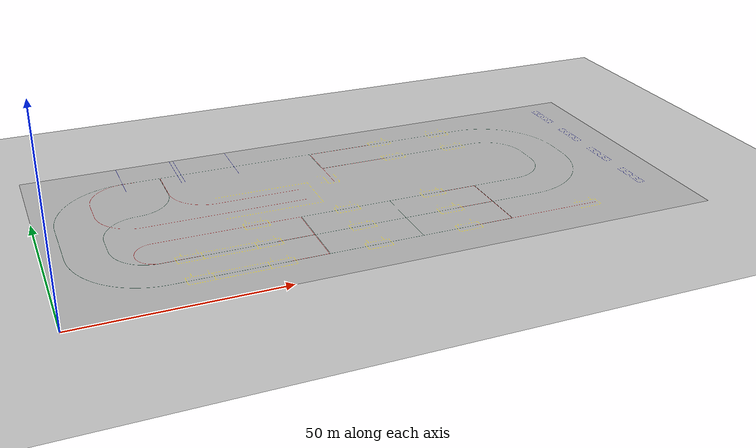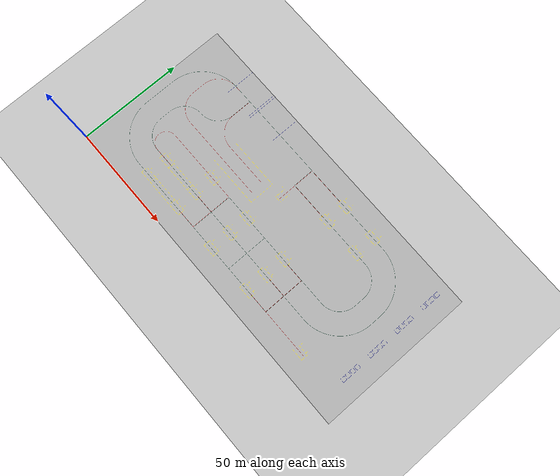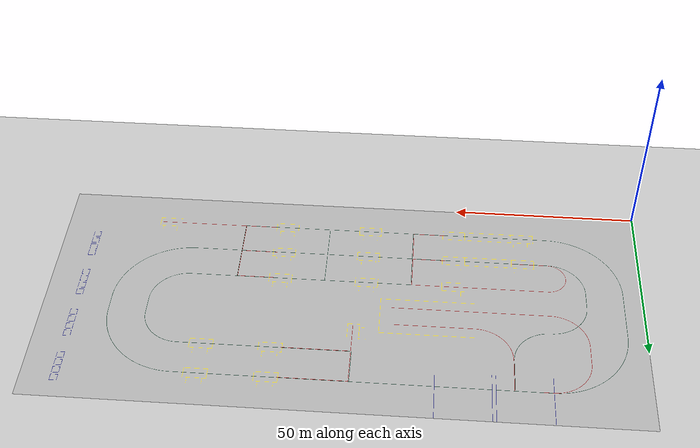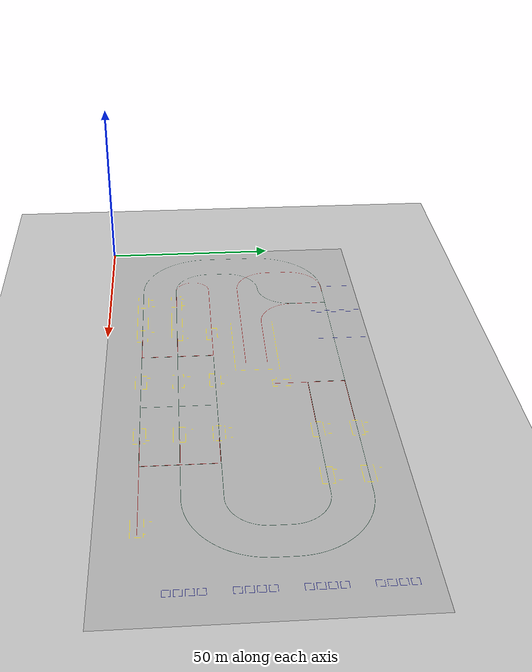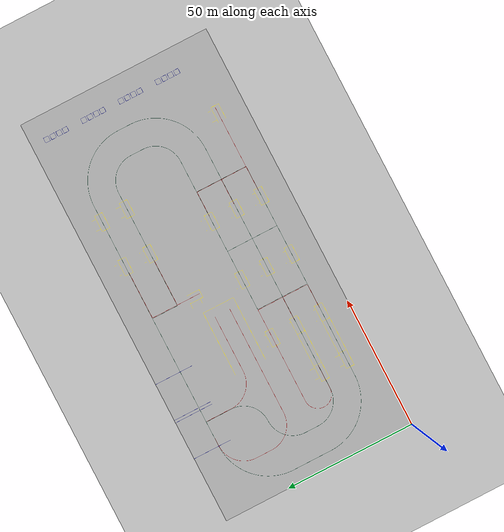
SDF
<sdf version="1.6">
 <world name="factory_ground">
  <gravity>0 0 -9.8</gravity>
  <physics name="default_physics" default="0" type="ode">
   <max_step_size>0.001</max_step_size>
   <real_time_factor>1</real_time_factor>
   <real_time_update_rate>1000</real_time_update_rate>
  </physics>
  <model name="ground_plane">
   <static>1</static>
   <link name="link">
    <collision name="collision">
     <geometry><plane><normal>0 0 1</normal><size>100 100</size></plane></geometry>
     <surface>
      <contact><collide_bitmask>65535</collide_bitmask></contact>
      <friction><ode><mu>100</mu><mu2>50</mu2></ode></friction>
     </surface>
    </collision>
    <visual name="visual">
     <cast_shadows>0</cast_shadows>
     <geometry><plane><normal>0 0 1</normal><size>100 100</size></plane></geometry>
     <material>
      <script><uri>file://media/materials/scripts/gazebo.material</uri><name>Gazebo/Grey</name></script>
     </material>
    </visual>
   </link>
  </model>
  <light name="sun" type="directional">
   <pose>0 0 10 0 -0 0</pose>
   <diffuse>0.8 0.8 0.8 1</diffuse>
   <specular>0.2 0.2 0.2 1</specular>
   <attenuation>
    <range>1000</range>
    <constant>0.9</constant>
    <linear>0.01</linear>
    <quadratic>0.001</quadratic>
   </attenuation>
   <direction>-0.5 0.1 -0.9</direction>
   <spot><inner_angle>0</inner_angle><outer_angle>0</outer_angle><falloff>0</falloff></spot>
  </light>
  <magnetic_field>6e-06 2.3e-05 -4.2e-05</magnetic_field>
  <atmosphere type="adiabatic"/>
  <scene><ambient>0.4 0.4 0.4 1</ambient><background>0.7 0.7 0.7 1</background><shadows>1</shadows></scene>
  <spherical_coordinates>
   <surface_model>EARTH_WGS84</surface_model>
   <latitude_deg>0</latitude_deg>
   <longitude_deg>0</longitude_deg>
   <elevation>0</elevation>
   <heading_deg>0</heading_deg>
  </spherical_coordinates>
  <model name="automobile_factory_Ground">
   <static>0</static>
   <link name="link">
    <inertial>
     <mass>1000</mass>
     <inertia>
      <ixx>1.20008e+06</ixx>
      <ixy>0</ixy>
      <ixz>0</ixz>
      <iyy>8.33342e+06</iyy>
      <iyz>0</iyz>
      <izz>2.03333e+06</izz>
     </inertia>
    </inertial>
    <collision name="colision">
     <pose>80 37.5 0</pose>
     <geometry><plane><normal>0 0 1</normal><size>160 75</size></plane></geometry>
     <surface>
      <friction><ode><mu>100</mu><mu2>50</mu2><fdir1>0 0 0</fdir1><slip1>0</slip1><slip2>0</slip2></ode></friction>
     </surface>
    </collision>
    <visual name="visual">
     <geometry>
      <mesh><uri>model://automobile_factory_Ground/meshes/automobile_factory_Ground.dae</uri></mesh>
     </geometry>
     <meta><layer>1</layer></meta>
    </visual>
   </link>
   <static>1</static>
  </model>
 </world>
</sdf>
